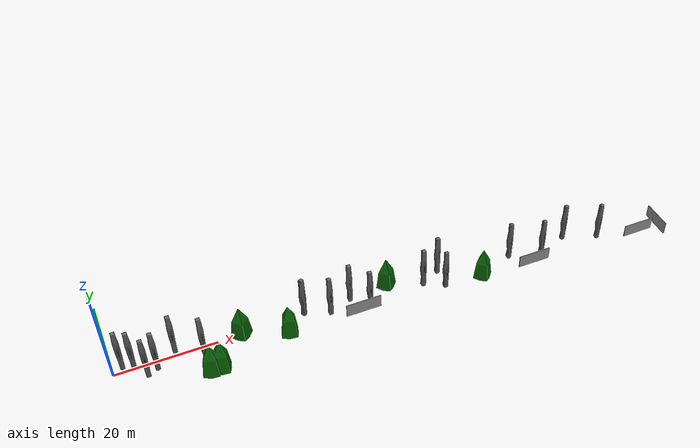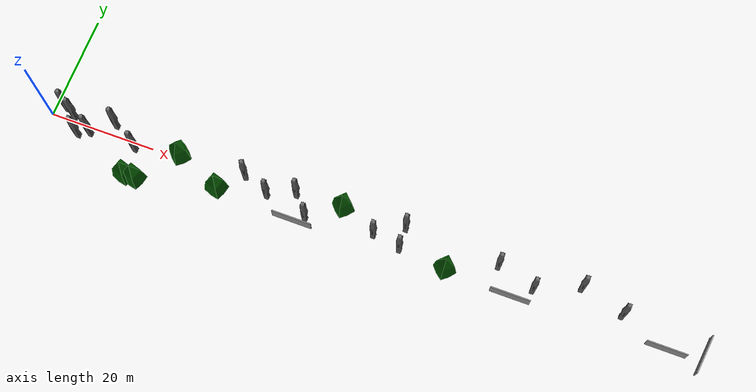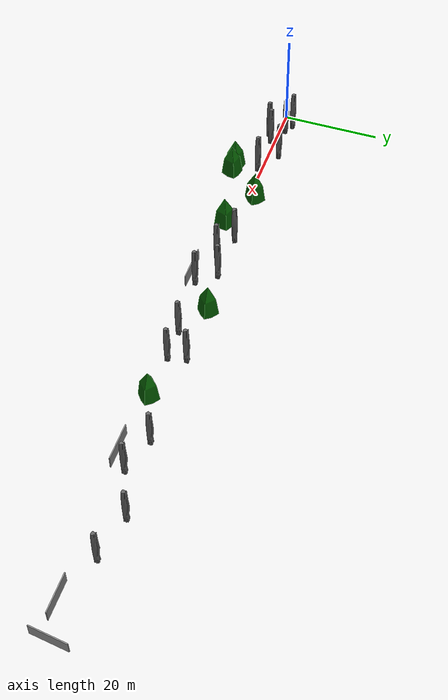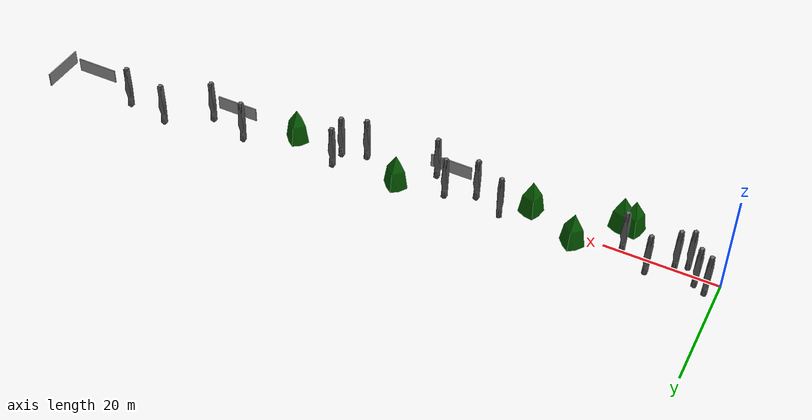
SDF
<sdf version="1.4">
 <world name="default">
  <include><uri>model://sun</uri></include>
  <plugin name="ros_interface_plugin" filename="librotors_gazebo_ros_interface_plugin.so"/>
  <spherical_coordinates>
   <surface_model>EARTH_WGS84</surface_model>
   <latitude_deg>47.3667</latitude_deg>
   <longitude_deg>8.5500</longitude_deg>
   <elevation>500.0</elevation>
   <heading_deg>0</heading_deg>
  </spherical_coordinates>
  <physics type="ode">
   <ode>
    <solver><type>quick</type><iters>1000</iters><sor>1.3</sor></solver>
    <constraints>
     <cfm>0</cfm>
     <erp>0.2</erp>
     <contact_max_correcting_vel>100</contact_max_correcting_vel>
     <contact_surface_layer>0.001</contact_surface_layer>
    </constraints>
   </ode>
   <max_step_size>0.01</max_step_size>
   <real_time_factor>1</real_time_factor>
   <real_time_update_rate>100</real_time_update_rate>
   <gravity>0 0 -9.8</gravity>
  </physics>
  <include>
   <static>true</static>
   <name>Simple Stone</name>
   <pose>2 2 0 0 0 0</pose>
   <uri>model://Simple Stone</uri>
  </include>
  <include>
   <static>true</static>
   <name>Simple Stone 2</name>
   <pose>4 1 0 0 0 0</pose>
   <uri>model://Simple Stone</uri>
  </include>
  <include>
   <static>true</static>
   <name>Simple Stone 3</name>
   <pose>6 -2 0 0 0 0</pose>
   <uri>model://Simple Stone</uri>
  </include>
  <include>
   <static>true</static>
   <name>Simple Stone 4</name>
   <pose>8 -1 0 0 0 0</pose>
   <uri>model://Simple Stone</uri>
  </include>
  <include>
   <static>true</static>
   <name>Simple Stone 5</name>
   <pose>12 2 0 0 0 0</pose>
   <uri>model://Simple Stone</uri>
  </include>
  <include>
   <static>true</static>
   <name>Simple Stone 6</name>
   <pose>17 -1 0 0 0 0</pose>
   <uri>model://Simple Stone</uri>
  </include>
  <include>
   <static>true</static>
   <name>Simple Pyramid 1</name>
   <pose>25 1 0 0 0 0</pose>
   <uri>model://Simple Pyramid</uri>
  </include>
  <include>
   <static>true</static>
   <name>Simple Pyramid 2</name>
   <pose>33.7 -2.56 0 0 0 0.47</pose>
   <uri>model://Simple Pyramid</uri>
  </include>
  <include>
   <static>true</static>
   <name>Simple Pyramid 3</name>
   <pose>17 -6 0 0 0 0.47</pose>
   <uri>model://Simple Pyramid</uri>
  </include>
  <include>
   <static>true</static>
   <name>Simple Pyramid 4</name>
   <pose>19 -6 0 0 0 0.47</pose>
   <uri>model://Simple Pyramid</uri>
  </include>
  <include>
   <static>true</static>
   <name>gery wall 1</name>
   <pose>49 -4 0 0 0 0</pose>
   <uri>model://grey_wall</uri>
  </include>
  <include>
   <static>true</static>
   <name>Simple stone 7</name>
   <pose>38 1 0 0 0 0.47</pose>
   <uri>model://Simple Stone</uri>
  </include>
  <include>
   <static>true</static>
   <name>Simple stone 8</name>
   <pose>43 -1 0 0 0 0</pose>
   <uri>model://Simple Stone</uri>
  </include>
  <include>
   <static>true</static>
   <name>Simple stone 9</name>
   <pose>48 1 0 0 0 0</pose>
   <uri>model://Simple Stone</uri>
  </include>
  <include>
   <static>true</static>
   <name>Simple stone 10</name>
   <pose>51 -2.6 0 0 0 0</pose>
   <uri>model://Simple Stone</uri>
  </include>
  <include>
   <static>true</static>
   <name>Simple Pyramid 5</name>
   <pose>56.6 2 0 0 0 0</pose>
   <uri>model://Simple Pyramid</uri>
  </include>
  <include>
   <static>true</static>
   <name>Simple stone 11</name>
   <pose>63.6 -1.3 0 0 0 0</pose>
   <uri>model://Simple Stone</uri>
  </include>
  <include>
   <static>true</static>
   <name>Simple stone 12</name>
   <pose>68.6 2.1 -1 0 0 0</pose>
   <uri>model://Simple Stone</uri>
  </include>
  <include>
   <static>true</static>
   <name>Simple stone 13</name>
   <pose>68.7 -1.7 -2 0 0 0</pose>
   <uri>model://Simple Stone</uri>
  </include>
  <include>
   <static>true</static>
   <name>Simple Pyramid 6</name>
   <pose>77.5 -2 -2 0 0 0</pose>
   <uri>model://Simple Pyramid</uri>
  </include>
  <include>
   <static>true</static>
   <name>grey wall 2</name>
   <pose>90 -2.9 -3 0 0 0</pose>
   <uri>model://grey_wall</uri>
  </include>
  <include>
   <static>true</static>
   <name>Simple stone 14</name>
   <pose>86.4 1.77 -3 0 0 0</pose>
   <uri>model://Simple Stone</uri>
  </include>
  <include>
   <static>true</static>
   <name>Simple stone 14</name>
   <pose>86.4 1.77 -3 0 0 0</pose>
   <uri>model://Simple Stone</uri>
  </include>
  <include>
   <static>true</static>
   <name>Simple stone 15</name>
   <pose>93.5 -0.3 -3 0 0 0</pose>
   <uri>model://Simple Stone</uri>
  </include>
  <include>
   <static>true</static>
   <name>Simple stone 16</name>
   <pose>101.7 3.3 -4 0 0 0</pose>
   <uri>model://Simple Stone</uri>
  </include>
  <include>
   <static>true</static>
   <name>Simple stone 17</name>
   <pose>110 1.3 -5 0 0 0</pose>
   <uri>model://Simple Stone</uri>
  </include>
  <include>
   <static>true</static>
   <name>grey wall 3</name>
   <pose>119 -2 -5 0 0 0</pose>
   <uri>model://grey_wall</uri>
  </include>
  <include>
   <static>true</static>
   <name>grey wall 4</name>
   <pose>125.7 -0.5 -6 0 0 1.45</pose>
   <uri>model://grey_wall</uri>
  </include>
 </world>
</sdf>

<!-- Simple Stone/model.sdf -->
<sdf version='1.6'>
  <model name='Simple Stone'>
    <pose>0 0 0 0 0 0</pose>
    <static>true</static>
    <link name="link">
      <collision name="collision">
        <geometry>
          <mesh>
            <uri>model://Simple Stone/meshes/Simple Stone.dae</uri>
         </mesh>
        </geometry>
      </collision>
      <visual name="visual">
        <geometry>
          <mesh>
            <uri>model://Simple Stone/meshes/Simple Stone.dae</uri>
         </mesh>
        </geometry>
      </visual>
    </link>
  </model>
 </sdf>

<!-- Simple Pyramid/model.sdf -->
<sdf version='1.6'>
  <model name='Simple Pyramid'>
    <pose>0 0 0 0 0 0</pose>
    <static>true</static>
    <link name="link">
      <collision name="collision">
        <geometry>
          <mesh>
            <uri>model://Simple Pyramid/meshes/Simple Pyramid.dae</uri>
         </mesh>
        </geometry>
      </collision>
      <visual name="visual">
        <geometry>
          <mesh>
            <uri>model://Simple Pyramid/meshes/Simple Pyramid.dae</uri>
         </mesh>
        </geometry>
      </visual>
    </link>
  </model>
 </sdf>

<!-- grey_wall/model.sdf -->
<sdf version="1.5">
  <model name="grey_wall">
    <static>true</static>
    <link name="link">
      <pose>0 0 1.4 0 0 0</pose>
      <collision name="collision">
        <geometry>
          <box>
            <size>7.5 0.2 2.8</size>
          </box>
        </geometry>
      </collision>
      <visual name="visual">
        <cast_shadows>false</cast_shadows>
        <geometry>
          <box>
            <size>7.5 0.2 2.8</size>
          </box>
        </geometry>
        <material>
          <script>
            <uri>model://../model_source/models/grey_wall/materials/scripts</uri>
            <uri>model://../model_source/models/grey_wall/materials/textures</uri>
            <name>vrc/grey_wall</name>
          </script>
        </material>
      </visual>
    </link>
  </model>
</sdf>
